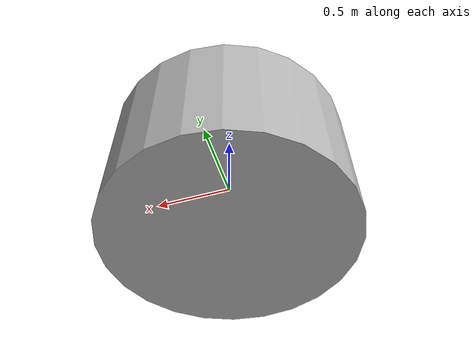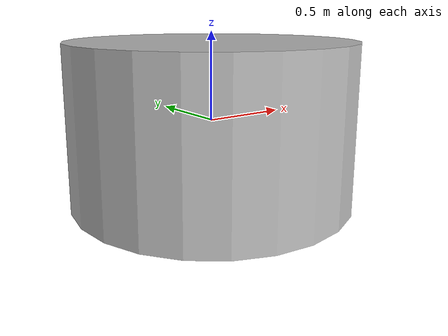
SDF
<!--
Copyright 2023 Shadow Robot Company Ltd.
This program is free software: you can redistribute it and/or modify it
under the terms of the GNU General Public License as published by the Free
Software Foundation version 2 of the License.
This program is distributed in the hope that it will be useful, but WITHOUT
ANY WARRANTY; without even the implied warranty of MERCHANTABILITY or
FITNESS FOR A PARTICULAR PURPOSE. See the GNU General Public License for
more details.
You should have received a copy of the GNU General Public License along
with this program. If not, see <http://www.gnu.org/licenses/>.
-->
<?xml version='1.0'?>

<sdf version="1.4">
<model name="laminar_flow_cylinder">
    <static>true</static>
    <link name="link">
      <collision name="collision">
        <geometry>
          <cylinder>
            <radius>0.8</radius>
            <length>0.9</length>
          </cylinder>
        </geometry>
      </collision>
      <visual name="visual">
        <geometry>
          <cylinder>
            <radius>0.8</radius>
            <length>0.9</length>
          </cylinder>
        </geometry>
      </visual>
    </link>
  </model>
</sdf>
